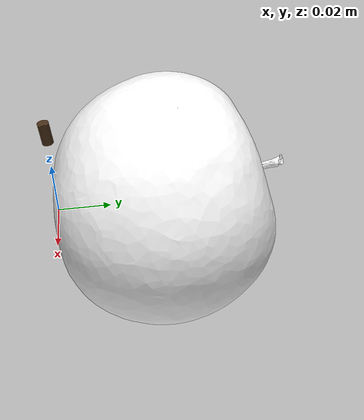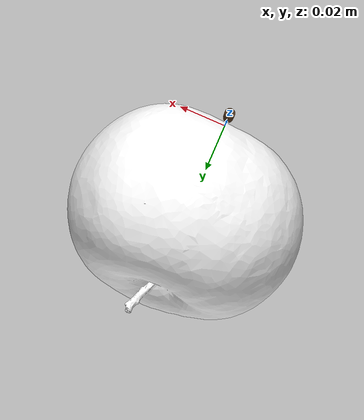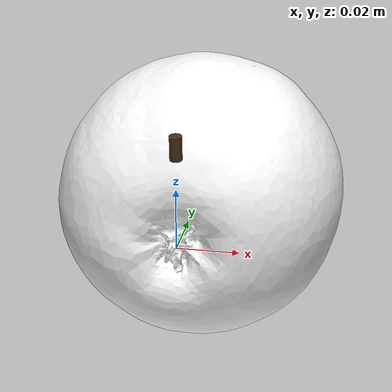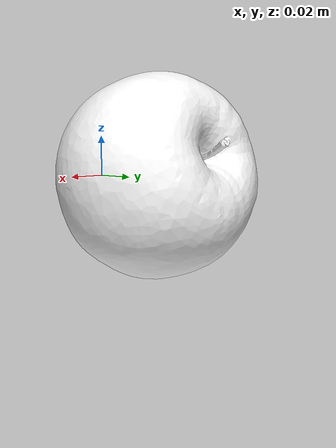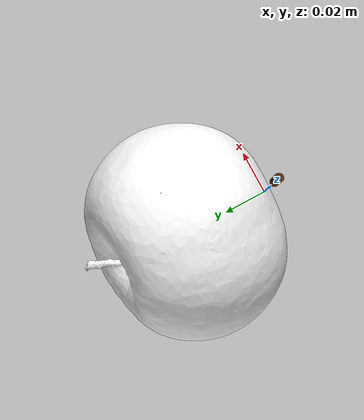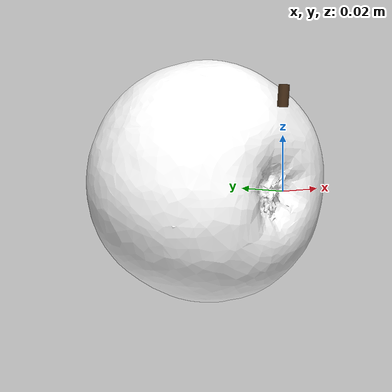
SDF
<?xml version="1.0" ?>
<!--
  Bruised Apple Model - Textured version

  Uses UV-mapped mesh with Poly Haven PBR textures.
  The diffuse texture has bruise marks added.
  Collision uses simple ellipsoid to avoid physics issues.
-->
<sdf version="1.9">
  <model name="apple_bruised">
    <static>false</static>

    <link name="body">
      <inertial>
        <mass>0.18</mass>
        <inertia>
          <ixx>0.000280</ixx>
          <iyy>0.000280</iyy>
          <izz>0.000250</izz>
        </inertia>
      </inertial>

      <!-- Apple body - textured mesh with bruise in texture -->
      <visual name="apple_visual">
        <geometry>
          <mesh>
            <uri>meshes/apple.obj</uri>
          </mesh>
        </geometry>
        <material>
          <double_sided>true</double_sided>
          <ambient>1 1 1 1</ambient>
          <diffuse>1 1 1 1</diffuse>
          <specular>0.3 0.3 0.3 1</specular>
          <pbr>
            <metal>
              <albedo_map>textures/apple_diff_4k.jpg</albedo_map>
              <normal_map>textures/apple_nor_4k.jpg</normal_map>
              <roughness_map>textures/apple_rough_4k.jpg</roughness_map>
              <metalness>0.0</metalness>
            </metal>
          </pbr>
        </material>
      </visual>

      <!-- Stem - small subtle cylinder -->
      <visual name="stem">
        <pose>0 0 0.034 0.08 0 0</pose>
        <geometry>
          <cylinder>
            <radius>0.002</radius>
            <length>0.008</length>
          </cylinder>
        </geometry>
        <material>
          <ambient>0.2 0.12 0.06 1</ambient>
          <diffuse>0.28 0.18 0.09 1</diffuse>
          <pbr>
            <metal>
              <metalness>0.0</metalness>
              <roughness>0.85</roughness>
            </metal>
          </pbr>
        </material>
      </visual>

      <!-- Collision - simple ellipsoid for stability -->
      <collision name="collision">
        <geometry>
          <ellipsoid>
            <radii>0.038 0.038 0.032</radii>
          </ellipsoid>
        </geometry>
        <surface>
          <friction>
            <ode>
              <mu>0.6</mu>
              <mu2>0.6</mu2>
            </ode>
          </friction>
        </surface>
      </collision>
    </link>
  </model>
</sdf>
